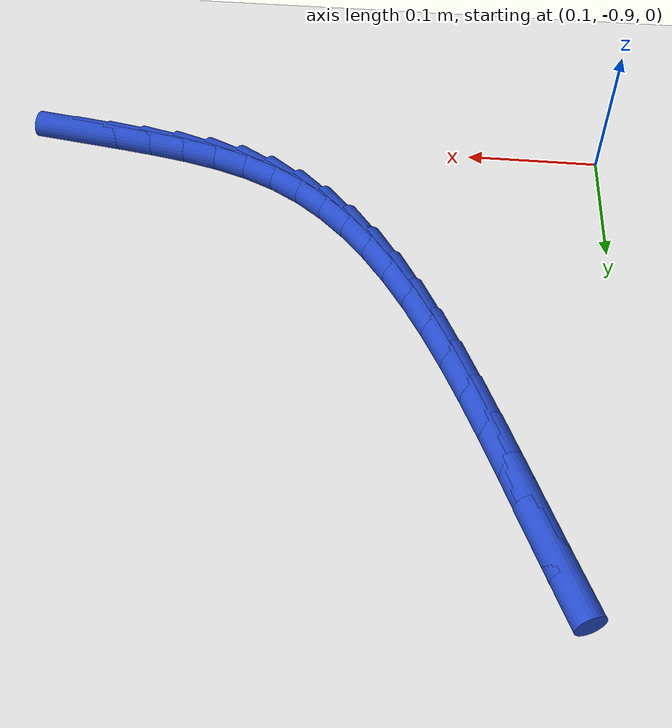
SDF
<sdf version="1.6">
 <world name="default">
  <model name="ground_plane">
   <static>1</static>
   <link name="link">
    <collision name="collision">
     <geometry><plane><normal>0 0 1</normal><size>100 100</size></plane></geometry>
     <surface><friction><ode><mu>100</mu><mu2>50</mu2></ode></friction></surface>
    </collision>
    <visual name="visual">
     <cast_shadows>0</cast_shadows>
     <geometry><plane><normal>0 0 1</normal><size>100 100</size></plane></geometry>
     <material>
      <script><uri>file://media/materials/scripts/gazebo.material</uri><name>Gazebo/WhiteGlow</name></script>
     </material>
    </visual>
   </link>
  </model>
  <model name="line">
   <link name="link_201">
    <pose>0.504323948133163 -0.891128216454323 0.01 0 1.57 -0.15330259562805876</pose>
    <collision name="collision">
     <geometry><cylinder><radius>0.01</radius><length>0.08</length></cylinder></geometry>
    </collision>
    <visual name="visual">
     <material>
      <script><name>Gazebo/Blue</name><uri>file://media/materials/scripts/gazebo.material</uri></script>
     </material>
     <geometry><cylinder><radius>0.01</radius><length>0.08</length></cylinder></geometry>
    </visual>
   </link>
   <link name="link_202">
    <pose>0.4757514998958289 -0.8867133460339465 0.01 0 1.57 -0.16657019759133676</pose>
    <collision name="collision">
     <geometry><cylinder><radius>0.01</radius><length>0.08</length></cylinder></geometry>
    </collision>
    <visual name="visual">
     <material>
      <script><name>Gazebo/Blue</name><uri>file://media/materials/scripts/gazebo.material</uri></script>
     </material>
     <geometry><cylinder><radius>0.01</radius><length>0.08</length></cylinder></geometry>
    </visual>
   </link>
   <link name="link_203">
    <pose>0.4476945431756668 -0.8819961854330656 0.01 0 1.57 -0.2009021192942088</pose>
    <collision name="collision">
     <geometry><cylinder><radius>0.01</radius><length>0.08</length></cylinder></geometry>
    </collision>
    <visual name="visual">
     <material>
      <script><name>Gazebo/Blue</name><uri>file://media/materials/scripts/gazebo.material</uri></script>
     </material>
     <geometry><cylinder><radius>0.01</radius><length>0.08</length></cylinder></geometry>
    </visual>
   </link>
   <link name="link_204">
    <pose>0.42042330364909236 -0.8764424139713632 0.01 0 1.57 -0.2582489271680801</pose>
    <collision name="collision">
     <geometry><cylinder><radius>0.01</radius><length>0.08</length></cylinder></geometry>
    </collision>
    <visual name="visual">
     <material>
      <script><name>Gazebo/Blue</name><uri>file://media/materials/scripts/gazebo.material</uri></script>
     </material>
     <geometry><cylinder><radius>0.01</radius><length>0.08</length></cylinder></geometry>
    </visual>
   </link>
   <link name="link_205">
    <pose>0.3942080069925216 -0.8695177109685234 0.01 0 1.57 -0.3409193268047903</pose>
    <collision name="collision">
     <geometry><cylinder><radius>0.01</radius><length>0.08</length></cylinder></geometry>
    </collision>
    <visual name="visual">
     <material>
      <script><name>Gazebo/Blue</name><uri>file://media/materials/scripts/gazebo.material</uri></script>
     </material>
     <geometry><cylinder><radius>0.01</radius><length>0.08</length></cylinder></geometry>
    </visual>
   </link>
   <link name="link_206">
    <pose>0.36931887888237114 -0.86068775574423 0.01 0 1.57 -0.4504595551329134</pose>
    <collision name="collision">
     <geometry><cylinder><radius>0.01</radius><length>0.08</length></cylinder></geometry>
    </collision>
    <visual name="visual">
     <material>
      <script><name>Gazebo/Blue</name><uri>file://media/materials/scripts/gazebo.material</uri></script>
     </material>
     <geometry><cylinder><radius>0.01</radius><length>0.08</length></cylinder></geometry>
    </visual>
   </link>
   <link name="link_207">
    <pose>0.3460241820572484 -0.8494219283365011 0.01 0 1.57 -0.5742880587031779</pose>
    <collision name="collision">
     <geometry><cylinder><radius>0.01</radius><length>0.08</length></cylinder></geometry>
    </collision>
    <visual name="visual">
     <material>
      <script><name>Gazebo/Blue</name><uri>file://media/materials/scripts/gazebo.material</uri></script>
     </material>
     <geometry><cylinder><radius>0.01</radius><length>0.08</length></cylinder></geometry>
    </visual>
   </link>
   <link name="link_208">
    <pose>0.32444801840175813 -0.8354613946308235 0.01 0 1.57 -0.6892979756779128</pose>
    <collision name="collision">
     <geometry><cylinder><radius>0.01</radius><length>0.08</length></cylinder></geometry>
    </collision>
    <visual name="visual">
     <material>
      <script><name>Gazebo/Blue</name><uri>file://media/materials/scripts/gazebo.material</uri></script>
     </material>
     <geometry><cylinder><radius>0.01</radius><length>0.08</length></cylinder></geometry>
    </visual>
   </link>
   <link name="link_209">
    <pose>0.3044743833133271 -0.8189999922560063 0.01 0 1.57 -0.7911918894300412</pose>
    <collision name="collision">
     <geometry><cylinder><radius>0.01</radius><length>0.08</length></cylinder></geometry>
    </collision>
    <visual name="visual">
     <material>
      <script><name>Gazebo/Blue</name><uri>file://media/materials/scripts/gazebo.material</uri></script>
     </material>
     <geometry><cylinder><radius>0.01</radius><length>0.08</length></cylinder></geometry>
    </visual>
   </link>
   <link name="link_210">
    <pose>0.2859645403588696 -0.8002744150646408 0.01 0 1.57 -0.8791779802465317</pose>
    <collision name="collision">
     <geometry><cylinder><radius>0.01</radius><length>0.08</length></cylinder></geometry>
    </collision>
    <visual name="visual">
     <material>
      <script><name>Gazebo/Blue</name><uri>file://media/materials/scripts/gazebo.material</uri></script>
     </material>
     <geometry><cylinder><radius>0.01</radius><length>0.08</length></cylinder></geometry>
    </visual>
   </link>
   <link name="link_211">
    <pose>0.26877975310530045 -0.7795213569093191 0.01 0 1.57 -0.9536164388851323</pose>
    <collision name="collision">
     <geometry><cylinder><radius>0.01</radius><length>0.08</length></cylinder></geometry>
    </collision>
    <visual name="visual">
     <material>
      <script><name>Gazebo/Blue</name><uri>file://media/materials/scripts/gazebo.material</uri></script>
     </material>
     <geometry><cylinder><radius>0.01</radius><length>0.08</length></cylinder></geometry>
    </visual>
   </link>
   <link name="link_212">
    <pose>0.2527812851195344 -0.7569775116426323 0.01 0 1.57 -1.015496013592494</pose>
    <collision name="collision">
     <geometry><cylinder><radius>0.01</radius><length>0.08</length></cylinder></geometry>
    </collision>
    <visual name="visual">
     <material>
      <script><name>Gazebo/Blue</name><uri>file://media/materials/scripts/gazebo.material</uri></script>
     </material>
     <geometry><cylinder><radius>0.01</radius><length>0.08</length></cylinder></geometry>
    </visual>
   </link>
   <link name="link_213">
    <pose>0.2378303999684863 -0.732879573117172 0.01 0 1.57 -1.0660338109154825</pose>
    <collision name="collision">
     <geometry><cylinder><radius>0.01</radius><length>0.08</length></cylinder></geometry>
    </collision>
    <visual name="visual">
     <material>
      <script><name>Gazebo/Blue</name><uri>file://media/materials/scripts/gazebo.material</uri></script>
     </material>
     <geometry><cylinder><radius>0.01</radius><length>0.08</length></cylinder></geometry>
    </visual>
   </link>
   <link name="link_214">
    <pose>0.22378836121907109 -0.7074642351855301 0.01 0 1.57 -1.1064271486639552</pose>
    <collision name="collision">
     <geometry><cylinder><radius>0.01</radius><length>0.08</length></cylinder></geometry>
    </collision>
    <visual name="visual">
     <material>
      <script><name>Gazebo/Blue</name><uri>file://media/materials/scripts/gazebo.material</uri></script>
     </material>
     <geometry><cylinder><radius>0.01</radius><length>0.08</length></cylinder></geometry>
    </visual>
   </link>
   <link name="link_215">
    <pose>0.21051643243820314 -0.6809681917002975 0.01 0 1.57 -1.1377233276071759</pose>
    <collision name="collision">
     <geometry><cylinder><radius>0.01</radius><length>0.08</length></cylinder></geometry>
    </collision>
    <visual name="visual">
     <material>
      <script><name>Gazebo/Blue</name><uri>file://media/materials/scripts/gazebo.material</uri></script>
     </material>
     <geometry><cylinder><radius>0.01</radius><length>0.08</length></cylinder></geometry>
    </visual>
   </link>
   <link name="link_216">
    <pose>0.197875877192798 -0.653628136514067 0.01 0 1.57 -1.1607626876581434</pose>
    <collision name="collision">
     <geometry><cylinder><radius>0.01</radius><length>0.08</length></cylinder></geometry>
    </collision>
    <visual name="visual">
     <material>
      <script><name>Gazebo/Blue</name><uri>file://media/materials/scripts/gazebo.material</uri></script>
     </material>
     <geometry><cylinder><radius>0.01</radius><length>0.08</length></cylinder></geometry>
    </visual>
   </link>
   <link name="link_217">
    <pose>0.18572795904977024 -0.6256807634794298 0.01 0 1.57 -1.1761601158906412</pose>
    <collision name="collision">
     <geometry><cylinder><radius>0.01</radius><length>0.08</length></cylinder></geometry>
    </collision>
    <visual name="visual">
     <material>
      <script><name>Gazebo/Blue</name><uri>file://media/materials/scripts/gazebo.material</uri></script>
     </material>
     <geometry><cylinder><radius>0.01</radius><length>0.08</length></cylinder></geometry>
    </visual>
   </link>
   <link name="link_218">
    <pose>0.1739339415760345 -0.5973627664489775 0.01 0 1.57 -1.1843026693186502</pose>
    <collision name="collision">
     <geometry><cylinder><radius>0.01</radius><length>0.08</length></cylinder></geometry>
    </collision>
    <visual name="visual">
     <material>
      <script><name>Gazebo/Blue</name><uri>file://media/materials/scripts/gazebo.material</uri></script>
     </material>
     <geometry><cylinder><radius>0.01</radius><length>0.08</length></cylinder></geometry>
    </visual>
   </link>
   <link name="link_219">
    <pose>0.16235508833850576 -0.5689108392753013 0.01 0 1.57 -1.1853504029500277</pose>
    <collision name="collision">
     <geometry><cylinder><radius>0.01</radius><length>0.08</length></cylinder></geometry>
    </collision>
    <visual name="visual">
     <material>
      <script><name>Gazebo/Blue</name><uri>file://media/materials/scripts/gazebo.material</uri></script>
     </material>
     <geometry><cylinder><radius>0.01</radius><length>0.08</length></cylinder></geometry>
    </visual>
   </link>
   <link name="link_220">
    <pose>0.1508526629040988 -0.5405616758109932 0.01 0 1.57 -1.1792334039423513</pose>
    <collision name="collision">
     <geometry><cylinder><radius>0.01</radius><length>0.08</length></cylinder></geometry>
    </collision>
    <visual name="visual">
     <material>
      <script><name>Gazebo/Blue</name><uri>file://media/materials/scripts/gazebo.material</uri></script>
     </material>
     <geometry><cylinder><radius>0.01</radius><length>0.08</length></cylinder></geometry>
    </visual>
   </link>
  </model>
 </world>
</sdf>
